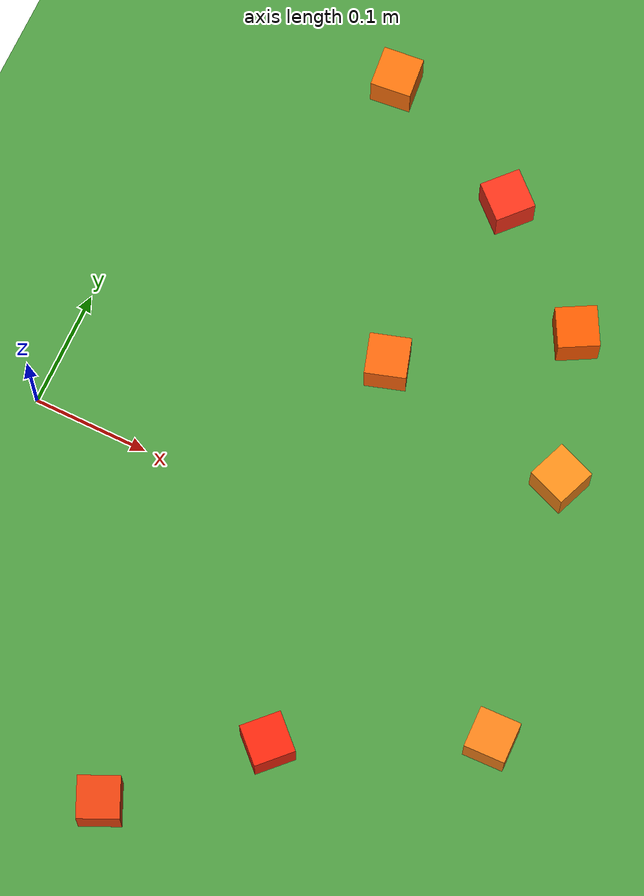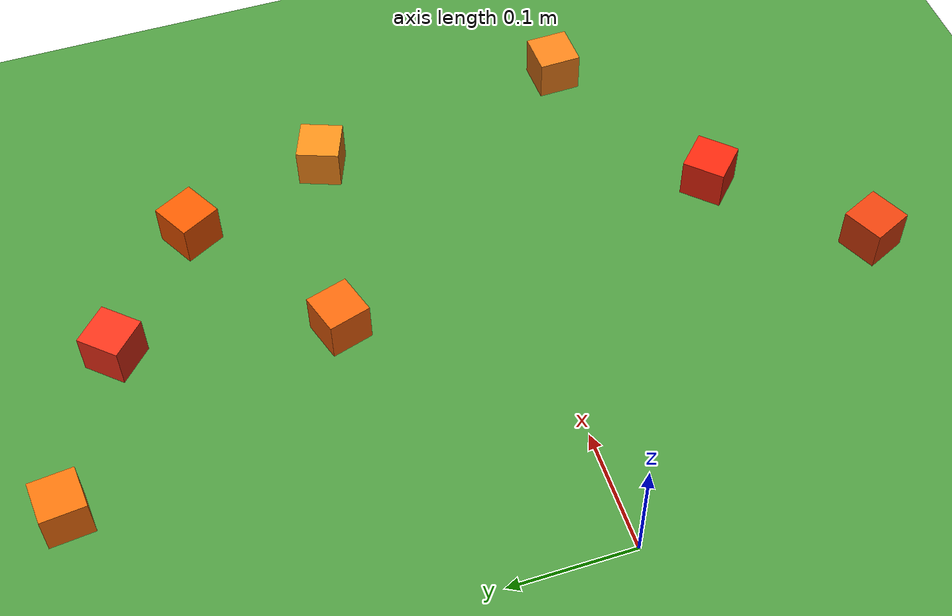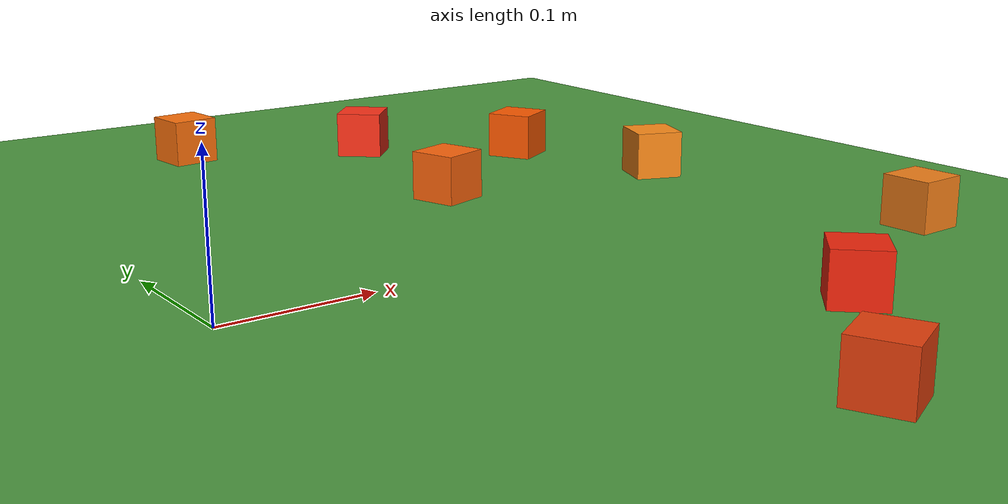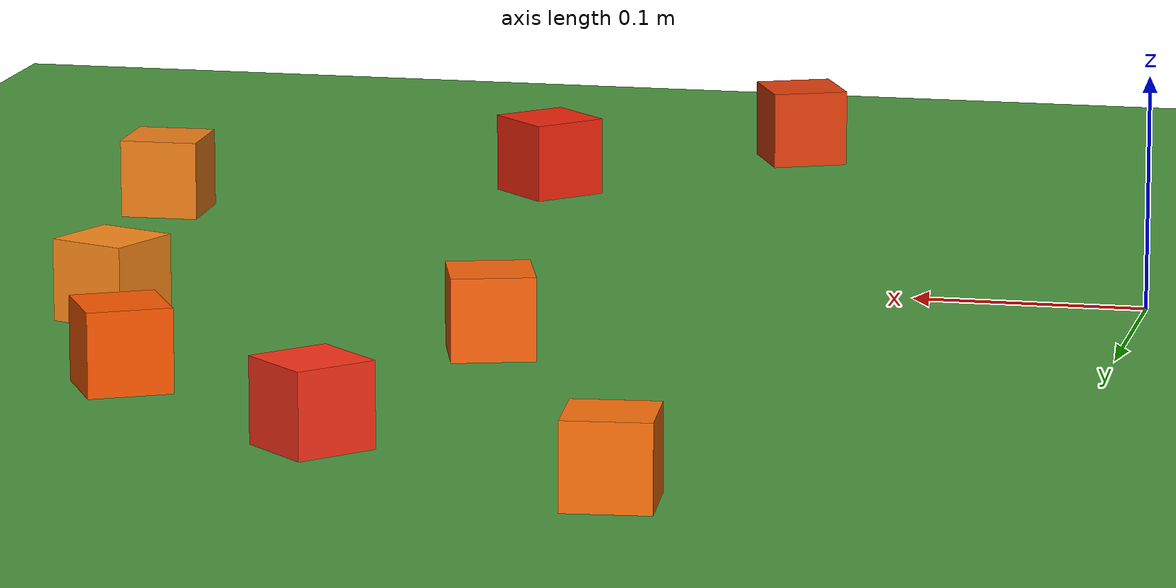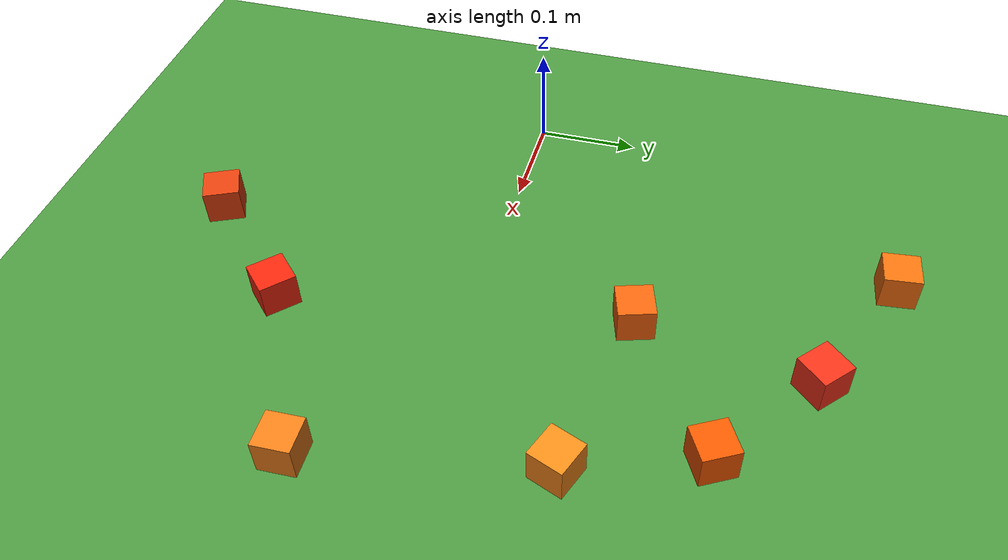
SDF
<?xml version="1.0"?>
<sdf version="1.6">
  <world name="default">
    <!-- Explicit sun with shadows -->
    <light type="directional" name="sun">
      <cast_shadows>true</cast_shadows>
      <pose>0 0 10 0 0 0</pose>
      <diffuse>0.9 0.9 0.85 1</diffuse>
      <specular>0.2 0.2 0.2 1</specular>
      <attenuation>
        <range>1000</range>
        <constant>0.9</constant>
        <linear>0.01</linear>
        <quadratic>0.001</quadratic>
      </attenuation>
      <direction>-0.4 0.2 -0.9</direction>
    </light>
    <scene>
      <ambient>0.45 0.45 0.45 1</ambient>
      <background>0.7 0.85 1.0 1</background>
      <shadows>true</shadows>
    </scene>

    <!-- Ground plane with short grass texture (Gazebo/Grass ships with gazebo11) -->
    <model name="grass_plane">
      <static>true</static>
      <link name="link">
        <collision name="collision">
          <geometry>
            <plane>
              <normal>0 0 1</normal>
              <size>50 50</size>
            </plane>
          </geometry>
          <surface>
            <friction>
              <ode>
                <mu>100</mu>
                <mu2>50</mu2>
              </ode>
            </friction>
          </surface>
        </collision>
        <visual name="visual">
          <cast_shadows>false</cast_shadows>
          <geometry>
            <plane>
              <normal>0 0 1</normal>
              <size>50 50</size>
            </plane>
          </geometry>
          <material>
            <script>
              <uri>file://media/materials/scripts/gazebo.material</uri>
              <name>Gazebo/Grass</name>
            </script>
          </material>
        </visual>
      </link>
    </model>

    <!-- Small cubes mimicking loose oil palm fruits (~35 mm, dark red-black),
         scattered inside the SCARA reachable annulus, away from the marker
         patch at (0.35, 0). -->
    <model name="fruit_1">
      <pose>0.25 0.15 0.02 0 0 0.3</pose>
      <link name="link">
        <inertial>
          <mass>0.01</mass>
          <inertia><ixx>1e-6</ixx><iyy>1e-6</iyy><izz>1e-6</izz><ixy>0</ixy><ixz>0</ixz><iyz>0</iyz></inertia>
        </inertial>
        <collision name="collision">
          <geometry><box><size>0.035 0.035 0.035</size></box></geometry>
        </collision>
        <visual name="visual">
          <geometry><box><size>0.035 0.035 0.035</size></box></geometry>
          <material>
            <ambient>0.60 0.24 0.03 1</ambient>
            <diffuse>1.00 0.40 0.05 1</diffuse>
            <specular>0.5 0.5 0.5 1</specular>
          </material>
        </visual>
      </link>
    </model>

    <model name="fruit_2">
      <pose>0.30 -0.18 0.02 0 0 0.8</pose>
      <link name="link">
        <inertial>
          <mass>0.01</mass>
          <inertia><ixx>1e-6</ixx><iyy>1e-6</iyy><izz>1e-6</izz><ixy>0</ixy><ixz>0</ixz><iyz>0</iyz></inertia>
        </inertial>
        <collision name="collision">
          <geometry><box><size>0.035 0.035 0.035</size></box></geometry>
        </collision>
        <visual name="visual">
          <geometry><box><size>0.035 0.035 0.035</size></box></geometry>
          <material>
            <ambient>0.57 0.09 0.03 1</ambient>
            <diffuse>0.95 0.15 0.05 1</diffuse>
            <specular>0.5 0.5 0.5 1</specular>
          </material>
        </visual>
      </link>
    </model>

    <model name="fruit_3">
      <pose>0.42 0.12 0.02 0 0 1.2</pose>
      <link name="link">
        <inertial>
          <mass>0.01</mass>
          <inertia><ixx>1e-6</ixx><iyy>1e-6</iyy><izz>1e-6</izz><ixy>0</ixy><ixz>0</ixz><iyz>0</iyz></inertia>
        </inertial>
        <collision name="collision">
          <geometry><box><size>0.035 0.035 0.035</size></box></geometry>
        </collision>
        <visual name="visual">
          <geometry><box><size>0.035 0.035 0.035</size></box></geometry>
          <material>
            <ambient>0.60 0.33 0.06 1</ambient>
            <diffuse>1.00 0.55 0.10 1</diffuse>
            <specular>0.5 0.5 0.5 1</specular>
          </material>
        </visual>
      </link>
    </model>

    <model name="fruit_4">
      <pose>0.20 -0.28 0.02 0 0 2.0</pose>
      <link name="link">
        <inertial>
          <mass>0.01</mass>
          <inertia><ixx>1e-6</ixx><iyy>1e-6</iyy><izz>1e-6</izz><ixy>0</ixy><ixz>0</ixz><iyz>0</iyz></inertia>
        </inertial>
        <collision name="collision">
          <geometry><box><size>0.035 0.035 0.035</size></box></geometry>
        </collision>
        <visual name="visual">
          <geometry><box><size>0.035 0.035 0.035</size></box></geometry>
          <material>
            <ambient>0.54 0.15 0.03 1</ambient>
            <diffuse>0.90 0.25 0.05 1</diffuse>
            <specular>0.5 0.5 0.5 1</specular>
          </material>
        </visual>
      </link>
    </model>

    <model name="fruit_5">
      <pose>0.38 0.24 0.02 0 0 0.5</pose>
      <link name="link">
        <inertial>
          <mass>0.01</mass>
          <inertia><ixx>1e-6</ixx><iyy>1e-6</iyy><izz>1e-6</izz><ixy>0</ixy><ixz>0</ixz><iyz>0</iyz></inertia>
        </inertial>
        <collision name="collision">
          <geometry><box><size>0.035 0.035 0.035</size></box></geometry>
        </collision>
        <visual name="visual">
          <geometry><box><size>0.035 0.035 0.035</size></box></geometry>
          <material>
            <ambient>0.60 0.21 0.00 1</ambient>
            <diffuse>1.00 0.35 0.00 1</diffuse>
            <specular>0.5 0.5 0.5 1</specular>
          </material>
        </visual>
      </link>
    </model>

    <model name="fruit_6">
      <pose>0.46 -0.10 0.02 0 0 1.6</pose>
      <link name="link">
        <inertial>
          <mass>0.01</mass>
          <inertia><ixx>1e-6</ixx><iyy>1e-6</iyy><izz>1e-6</izz><ixy>0</ixy><ixz>0</ixz><iyz>0</iyz></inertia>
        </inertial>
        <collision name="collision">
          <geometry><box><size>0.035 0.035 0.035</size></box></geometry>
        </collision>
        <visual name="visual">
          <geometry><box><size>0.035 0.035 0.035</size></box></geometry>
          <material>
            <ambient>0.57 0.30 0.06 1</ambient>
            <diffuse>0.95 0.50 0.10 1</diffuse>
            <specular>0.5 0.5 0.5 1</specular>
          </material>
        </visual>
      </link>
    </model>

    <model name="fruit_7">
      <pose>0.28 0.32 0.02 0 0 2.4</pose>
      <link name="link">
        <inertial>
          <mass>0.01</mass>
          <inertia><ixx>1e-6</ixx><iyy>1e-6</iyy><izz>1e-6</izz><ixy>0</ixy><ixz>0</ixz><iyz>0</iyz></inertia>
        </inertial>
        <collision name="collision">
          <geometry><box><size>0.035 0.035 0.035</size></box></geometry>
        </collision>
        <visual name="visual">
          <geometry><box><size>0.035 0.035 0.035</size></box></geometry>
          <material>
            <ambient>0.60 0.12 0.06 1</ambient>
            <diffuse>1.00 0.20 0.10 1</diffuse>
            <specular>0.5 0.5 0.5 1</specular>
          </material>
        </visual>
      </link>
    </model>

    <model name="fruit_8">
      <pose>0.15 0.38 0.02 0 0 0.1</pose>
      <link name="link">
        <inertial>
          <mass>0.01</mass>
          <inertia><ixx>1e-6</ixx><iyy>1e-6</iyy><izz>1e-6</izz><ixy>0</ixy><ixz>0</ixz><iyz>0</iyz></inertia>
        </inertial>
        <collision name="collision">
          <geometry><box><size>0.035 0.035 0.035</size></box></geometry>
        </collision>
        <visual name="visual">
          <geometry><box><size>0.035 0.035 0.035</size></box></geometry>
          <material>
            <ambient>0.60 0.27 0.03 1</ambient>
            <diffuse>1.00 0.45 0.05 1</diffuse>
            <specular>0.5 0.5 0.5 1</specular>
          </material>
        </visual>
      </link>
    </model>
  </world>
</sdf>
